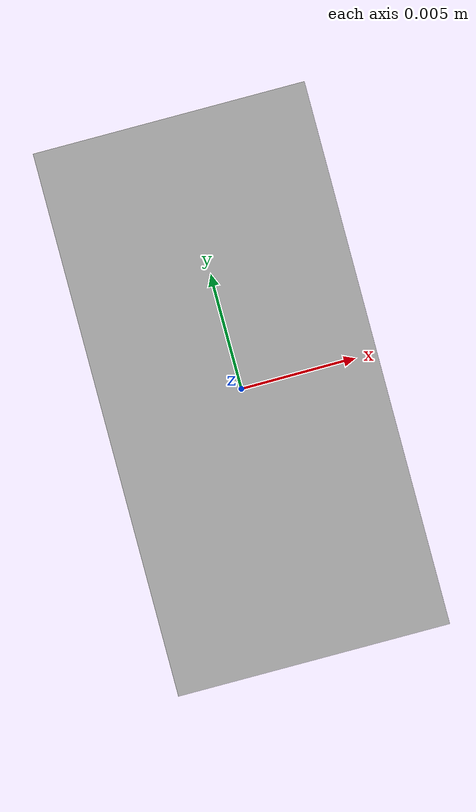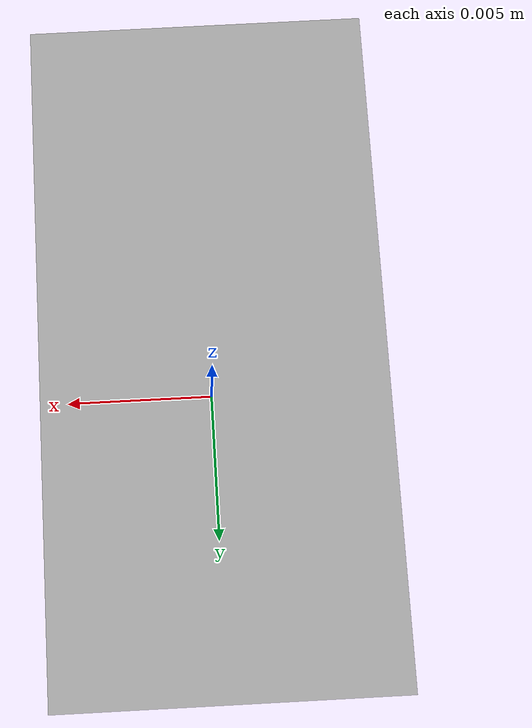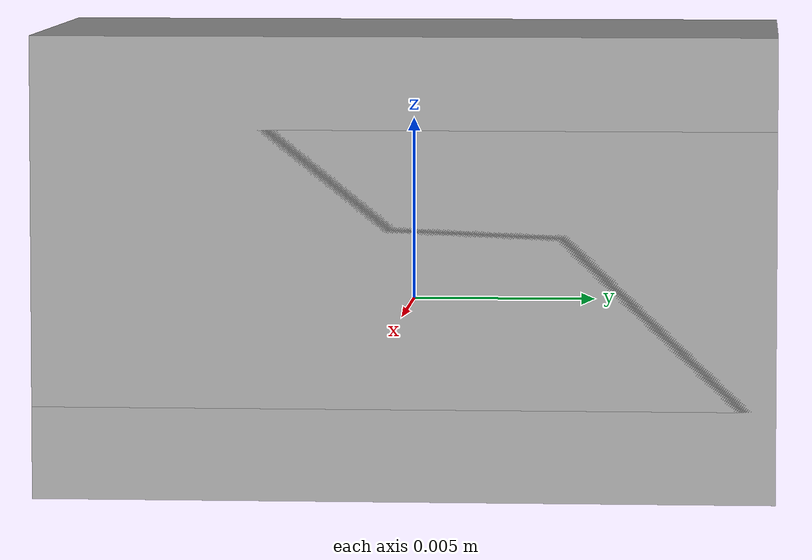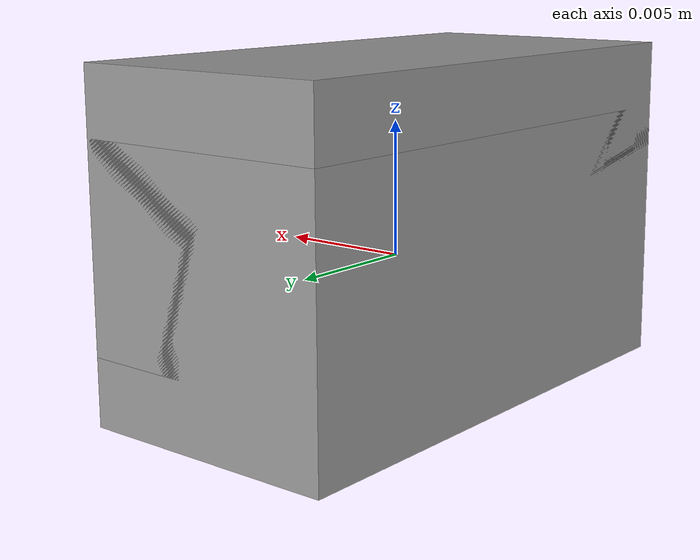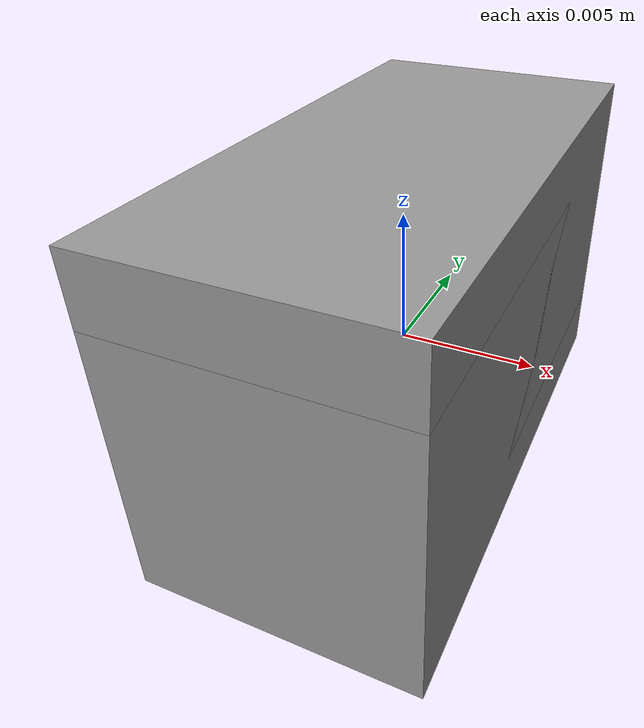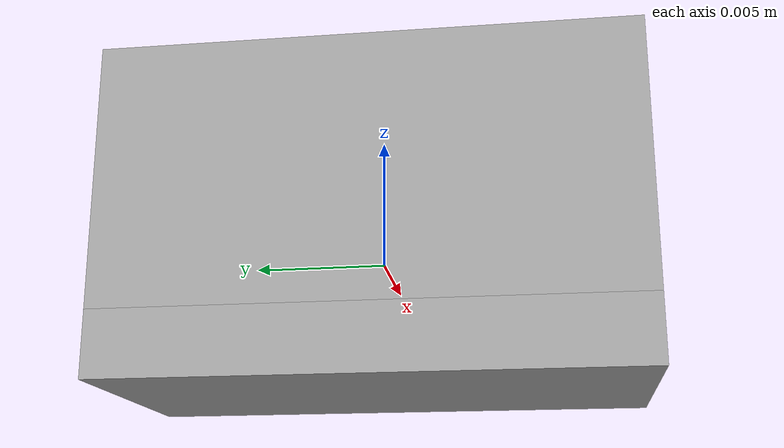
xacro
<?xml version="1.0"?>
<robot xmlns:xacro="http://www.ros.org/wiki/xacro" name="lazDar">
  <xacro:property name="base_radius" value="0.005"/>
  <xacro:property name="base_height" value="0.005"/>
  <xacro:property name="laz_radius" value="0.01"/>
  <xacro:property name="laz_height" value="0.01"/>

  <gazebo reference="laz_base">
    <material>Gazebo/Grey</material>
    <mu1>0.2</mu1>
    <mu2>0.2</mu2>
  </gazebo>

  <link name="laz_base">
    <visual>
      <geometry>
        <box size="0.01 0.02 0.01"/>
      </geometry>
    </visual>

    <collision>
      <geometry>
        <box size="0.01 0.02 0.01"/>
      </geometry>
    </collision>

    <inertial>
      <mass value="0.1"/>
      <inertia ixx="${(1/12) * 0.1 * (3 * base_radius * base_radius + base_height * base_height)}" ixy="0" ixz="0" iyy="${(1/12) * 0.1 * (3 * base_radius * base_radius + base_height * base_height)}" iyz="0" izz="${(1/2) * 0.1 * base_radius * base_radius}"/>
    </inertial>
  </link>

  <gazebo reference="laz_rot">
    <material>Gazebo/Grey</material>
    <mu1>0.2</mu1>
    <mu2>0.2</mu2>
    <sensor type="ray" name="laz">
       <always_on>true</always_on>
       <pose>${laz_radius} 0 ${laz_height/4} ${pi/2} 0 0</pose>
       <visualize>true</visualize>
       <update_rate>30</update_rate>
       <ray>
         <noise>
           <type>gaussian</type>
           <mean>0.0</mean>
           <stddev>0.01</stddev>
         </noise>

         <scan>
           <horizontal>
             <samples>720</samples>
             <resolution>0.25</resolution>
             <min_angle>-${pi/8}</min_angle>
             <max_angle>${pi/8}</max_angle>
           </horizontal>
           <vertical>
             <samples>1</samples>
             <resolution>1</resolution>
             <min_angle>-0.15</min_angle>
             <max_angle>0.15</max_angle>
           </vertical>
         </scan>
          <range>
           <min>0.05</min>
           <max>15</max>
           <resolution>0.02</resolution>
         </range>
      </ray>
   </sensor>
  </gazebo>

  <link name="laz_rot">
    <visual>
      <geometry>
        <box size="0.01 0.02 0.01"/>
      </geometry>
    </visual>

    <collision>
      <geometry>
        <box size="0.01 0.02 0.01"/>
      </geometry>
    </collision>

    <inertial>
      <mass value="0.1"/>
      <inertia ixx="${(1/12) * 0.1 * (3 * laz_radius * laz_radius + laz_height * laz_height)}" ixy="0" ixz="0" iyy="${(1/12) * 0.1 * (3 * laz_radius * laz_radius + laz_height * laz_height)}" iyz="0" izz="${(1/2) * 0.1 * laz_radius * laz_radius}"/>
    </inertial>
  </link>

  <joint name="lazRot" type="continuous">
    <parent link="laz_base"/>
    <child link="laz_rot"/>
    <axis xyz="0 0 1"/>
    <origin xyz = "0 0 ${base_height/2}"/>
    <dynamics friction="0.1"/>
  </joint>

  <gazebo>
       <plugin name="mysensor_plugin" filename="libmysensor_plugin.so"> </plugin>
  </gazebo>

</robot>
